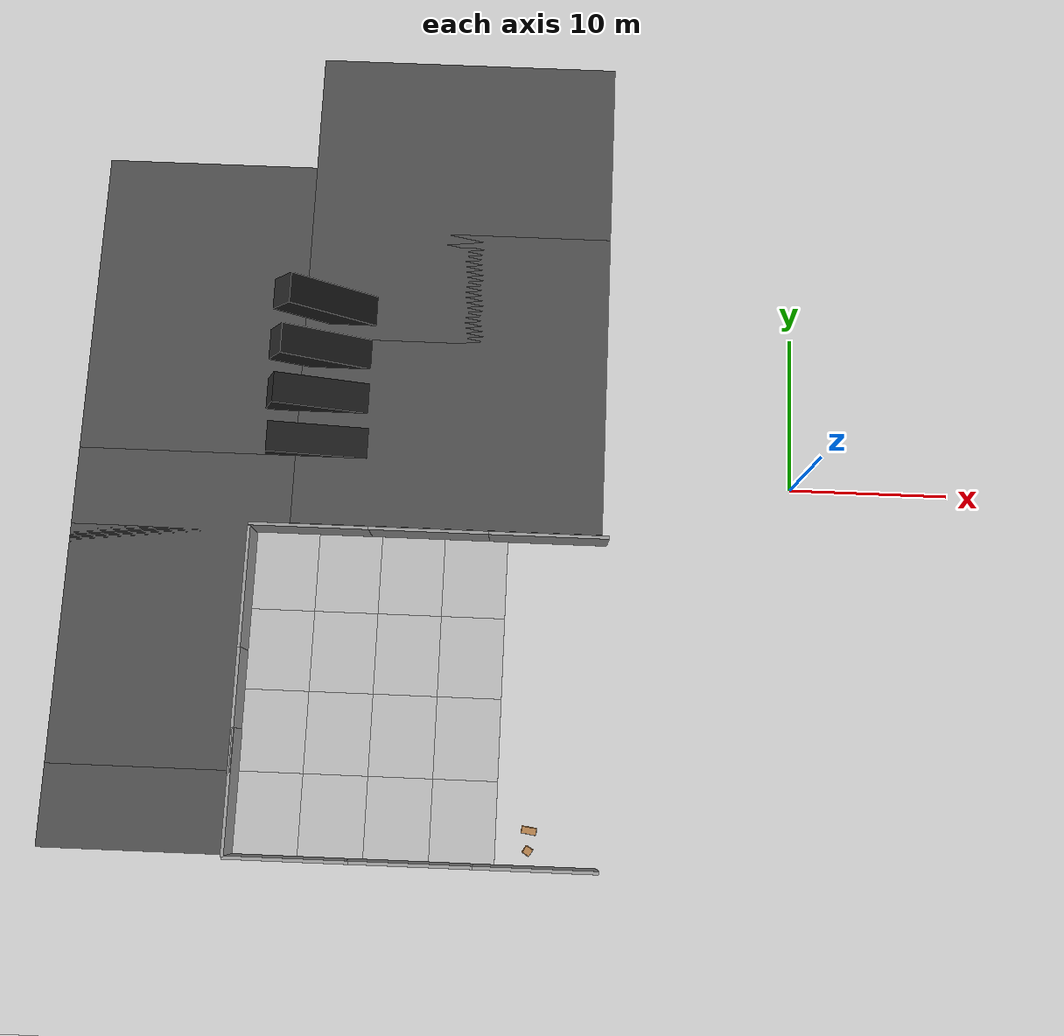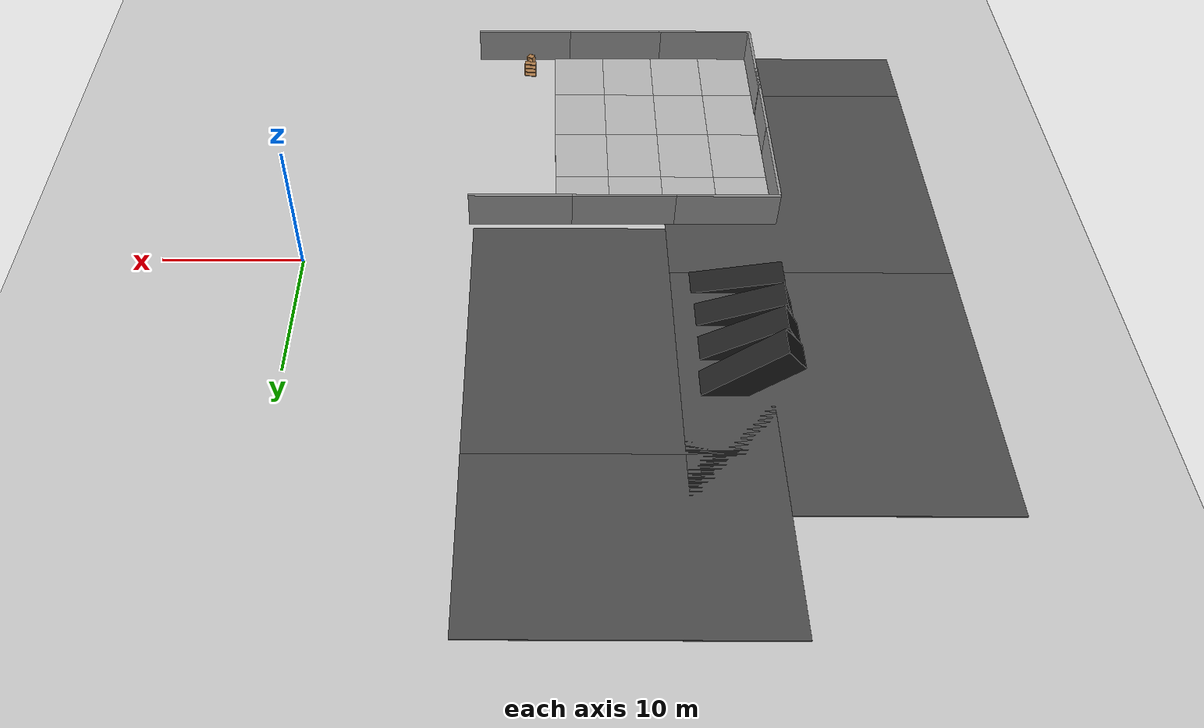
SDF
<sdf version="1.4">
 <world name="default">
  <light name="sun" type="directional">
   <pose>0 0 10 0 -0 0</pose>
   <diffuse>0.8 0.8 0.8 1</diffuse>
   <specular>0.2 0.2 0.2 1</specular>
   <attenuation>
    <range>1000</range>
    <constant>0.9</constant>
    <linear>0.01</linear>
    <quadratic>0.001</quadratic>
   </attenuation>
   <direction>0.5 0.1 -0.9</direction>
  </light>
  <model name="ground_plane">
   <static>1</static>
   <link name="link">
    <collision name="collision">
     <geometry><plane><normal>0 0 1</normal><size>100 100</size></plane></geometry>
     <surface><friction><ode><mu>100</mu><mu2>50</mu2></ode></friction></surface>
    </collision>
    <visual name="visual">
     <cast_shadows>0</cast_shadows>
     <geometry><plane><normal>0 0 1</normal><size>100 100</size></plane></geometry>
     <material>
      <script><uri>file://media/materials/scripts/gazebo.material</uri><name>Gazebo/Grey</name></script>
     </material>
    </visual>
    <velocity_decay><linear>0</linear><angular>0</angular></velocity_decay>
   </link>
  </model>
  <physics type="ode">
   <max_step_size>0.001</max_step_size>
   <real_time_factor>1</real_time_factor>
   <real_time_update_rate>1000</real_time_update_rate>
   <gravity>0 0 -9.8</gravity>
  </physics>
  <scene><ambient>0.4 0.4 0.4 1</ambient><background>0.7 0.7 0.7 1</background><shadows>1</shadows></scene>
  <spherical_coordinates>
   <surface_model>EARTH_WGS84</surface_model>
   <latitude_deg>0</latitude_deg>
   <longitude_deg>0</longitude_deg>
   <elevation>0</elevation>
   <heading_deg>0</heading_deg>
  </spherical_coordinates>
  <model name="grey_wall">
   <static>1</static>
   <link name="link">
    <pose>0 0 1.4 0 -0 0</pose>
    <collision name="collision"><geometry><box><size>7.5 0.2 2.8</size></box></geometry></collision>
    <visual name="visual">
     <cast_shadows>0</cast_shadows>
     <geometry><box><size>7.5 0.2 2.8</size></box></geometry>
     <material>
      <script>
       <uri>model://grey_wall/materials/scripts</uri>
       <uri>model://grey_wall/materials/textures</uri>
       <name>vrc/grey_wall</name>
      </script>
     </material>
    </visual>
    <velocity_decay><linear>0</linear><angular>0</angular></velocity_decay>
   </link>
   <pose>-15.4287 -4 0 0 -0 0</pose>
  </model>
  <model name="grey_wall_0">
   <static>1</static>
   <link name="link">
    <pose>0 0 1.4 0 -0 0</pose>
    <collision name="collision"><geometry><box><size>7.5 0.2 2.8</size></box></geometry></collision>
    <visual name="visual">
     <cast_shadows>0</cast_shadows>
     <geometry><box><size>7.5 0.2 2.8</size></box></geometry>
     <material>
      <script>
       <uri>model://grey_wall/materials/scripts</uri>
       <uri>model://grey_wall/materials/textures</uri>
       <name>vrc/grey_wall</name>
      </script>
     </material>
    </visual>
    <velocity_decay><linear>0</linear><angular>0</angular></velocity_decay>
   </link>
   <pose>-22.9275 -4 0 0 -0 0</pose>
  </model>
  <model name="grey_wall_1">
   <static>1</static>
   <link name="link">
    <pose>0 0 1.4 0 -0 0</pose>
    <collision name="collision"><geometry><box><size>7.5 0.2 2.8</size></box></geometry></collision>
    <visual name="visual">
     <cast_shadows>0</cast_shadows>
     <geometry><box><size>7.5 0.2 2.8</size></box></geometry>
     <material>
      <script>
       <uri>model://grey_wall/materials/scripts</uri>
       <uri>model://grey_wall/materials/textures</uri>
       <name>vrc/grey_wall</name>
      </script>
     </material>
    </visual>
    <velocity_decay><linear>0</linear><angular>0</angular></velocity_decay>
   </link>
   <pose>-30.3965 -4 0 0 -0 0</pose>
  </model>
  <model name="mud_box_6">
   <static>1</static>
   <link name="link">
    <collision name="collision"><geometry><box><size>8 10 0.2</size></box></geometry></collision>
    <visual name="visual_1">
     <pose>-2 2.5 0 0 -0 0</pose>
     <cast_shadows>0</cast_shadows>
     <geometry><box><size>4 5 0.2</size></box></geometry>
     <material>
      <script>
       <uri>model://mud_box/materials/scripts</uri>
       <uri>model://mud_box/materials/textures</uri>
       <name>vrc/mud</name>
      </script>
     </material>
    </visual>
    <visual name="visual_2">
     <pose>2 2.5 0 0 -0 0</pose>
     <cast_shadows>0</cast_shadows>
     <geometry><box><size>4 5 0.2</size></box></geometry>
     <material>
      <script>
       <uri>model://mud_box/materials/scripts</uri>
       <uri>model://mud_box/materials/textures</uri>
       <name>vrc/mud</name>
      </script>
     </material>
    </visual>
    <visual name="visual_3">
     <pose>2 -2.5 0 0 -0 0</pose>
     <cast_shadows>0</cast_shadows>
     <geometry><box><size>4 5 0.2</size></box></geometry>
     <material>
      <script>
       <uri>model://mud_box/materials/scripts</uri>
       <uri>model://mud_box/materials/textures</uri>
       <name>vrc/mud</name>
      </script>
     </material>
    </visual>
    <visual name="visual_4">
     <pose>-2 -2.5 0 0 -0 0</pose>
     <cast_shadows>0</cast_shadows>
     <geometry><box><size>4 5 0.2</size></box></geometry>
     <material>
      <script>
       <uri>model://mud_box/materials/scripts</uri>
       <uri>model://mud_box/materials/textures</uri>
       <name>vrc/mud</name>
      </script>
     </material>
    </visual>
    <velocity_decay><linear>0</linear><angular>0</angular></velocity_decay>
   </link>
   <pose>-30 -9 0 0 -0 0</pose>
  </model>
  <model name="mud_box_7">
   <static>1</static>
   <link name="link">
    <collision name="collision"><geometry><box><size>8 10 0.2</size></box></geometry></collision>
    <visual name="visual_1">
     <pose>-2 2.5 0 0 -0 0</pose>
     <cast_shadows>0</cast_shadows>
     <geometry><box><size>4 5 0.2</size></box></geometry>
     <material>
      <script>
       <uri>model://mud_box/materials/scripts</uri>
       <uri>model://mud_box/materials/textures</uri>
       <name>vrc/mud</name>
      </script>
     </material>
    </visual>
    <visual name="visual_2">
     <pose>2 2.5 0 0 -0 0</pose>
     <cast_shadows>0</cast_shadows>
     <geometry><box><size>4 5 0.2</size></box></geometry>
     <material>
      <script>
       <uri>model://mud_box/materials/scripts</uri>
       <uri>model://mud_box/materials/textures</uri>
       <name>vrc/mud</name>
      </script>
     </material>
    </visual>
    <visual name="visual_3">
     <pose>2 -2.5 0 0 -0 0</pose>
     <cast_shadows>0</cast_shadows>
     <geometry><box><size>4 5 0.2</size></box></geometry>
     <material>
      <script>
       <uri>model://mud_box/materials/scripts</uri>
       <uri>model://mud_box/materials/textures</uri>
       <name>vrc/mud</name>
      </script>
     </material>
    </visual>
    <visual name="visual_4">
     <pose>-2 -2.5 0 0 -0 0</pose>
     <cast_shadows>0</cast_shadows>
     <geometry><box><size>4 5 0.2</size></box></geometry>
     <material>
      <script>
       <uri>model://mud_box/materials/scripts</uri>
       <uri>model://mud_box/materials/textures</uri>
       <name>vrc/mud</name>
      </script>
     </material>
    </visual>
    <velocity_decay><linear>0</linear><angular>0</angular></velocity_decay>
   </link>
   <pose>-30 -19 0 0 -0 0</pose>
  </model>
  <model name="mud_box_8">
   <static>1</static>
   <link name="link">
    <collision name="collision"><geometry><box><size>8 10 0.2</size></box></geometry></collision>
    <visual name="visual_1">
     <pose>-2 2.5 0 0 -0 0</pose>
     <cast_shadows>0</cast_shadows>
     <geometry><box><size>4 5 0.2</size></box></geometry>
     <material>
      <script>
       <uri>model://mud_box/materials/scripts</uri>
       <uri>model://mud_box/materials/textures</uri>
       <name>vrc/mud</name>
      </script>
     </material>
    </visual>
    <visual name="visual_2">
     <pose>2 2.5 0 0 -0 0</pose>
     <cast_shadows>0</cast_shadows>
     <geometry><box><size>4 5 0.2</size></box></geometry>
     <material>
      <script>
       <uri>model://mud_box/materials/scripts</uri>
       <uri>model://mud_box/materials/textures</uri>
       <name>vrc/mud</name>
      </script>
     </material>
    </visual>
    <visual name="visual_3">
     <pose>2 -2.5 0 0 -0 0</pose>
     <cast_shadows>0</cast_shadows>
     <geometry><box><size>4 5 0.2</size></box></geometry>
     <material>
      <script>
       <uri>model://mud_box/materials/scripts</uri>
       <uri>model://mud_box/materials/textures</uri>
       <name>vrc/mud</name>
      </script>
     </material>
    </visual>
    <visual name="visual_4">
     <pose>-2 -2.5 0 0 -0 0</pose>
     <cast_shadows>0</cast_shadows>
     <geometry><box><size>4 5 0.2</size></box></geometry>
     <material>
      <script>
       <uri>model://mud_box/materials/scripts</uri>
       <uri>model://mud_box/materials/textures</uri>
       <name>vrc/mud</name>
      </script>
     </material>
    </visual>
    <velocity_decay><linear>0</linear><angular>0</angular></velocity_decay>
   </link>
   <pose>-22 -19 0 0 -0 0</pose>
  </model>
  <model name="mud_box_9">
   <static>1</static>
   <link name="link">
    <collision name="collision"><geometry><box><size>8 10 0.2</size></box></geometry></collision>
    <visual name="visual_1">
     <pose>-2 2.5 0 0 -0 0</pose>
     <cast_shadows>0</cast_shadows>
     <geometry><box><size>4 5 0.2</size></box></geometry>
     <material>
      <script>
       <uri>model://mud_box/materials/scripts</uri>
       <uri>model://mud_box/materials/textures</uri>
       <name>vrc/mud</name>
      </script>
     </material>
    </visual>
    <visual name="visual_2">
     <pose>2 2.5 0 0 -0 0</pose>
     <cast_shadows>0</cast_shadows>
     <geometry><box><size>4 5 0.2</size></box></geometry>
     <material>
      <script>
       <uri>model://mud_box/materials/scripts</uri>
       <uri>model://mud_box/materials/textures</uri>
       <name>vrc/mud</name>
      </script>
     </material>
    </visual>
    <visual name="visual_3">
     <pose>2 -2.5 0 0 -0 0</pose>
     <cast_shadows>0</cast_shadows>
     <geometry><box><size>4 5 0.2</size></box></geometry>
     <material>
      <script>
       <uri>model://mud_box/materials/scripts</uri>
       <uri>model://mud_box/materials/textures</uri>
       <name>vrc/mud</name>
      </script>
     </material>
    </visual>
    <visual name="visual_4">
     <pose>-2 -2.5 0 0 -0 0</pose>
     <cast_shadows>0</cast_shadows>
     <geometry><box><size>4 5 0.2</size></box></geometry>
     <material>
      <script>
       <uri>model://mud_box/materials/scripts</uri>
       <uri>model://mud_box/materials/textures</uri>
       <name>vrc/mud</name>
      </script>
     </material>
    </visual>
    <velocity_decay><linear>0</linear><angular>0</angular></velocity_decay>
   </link>
   <pose>-22 -9 0 0 -0 0</pose>
  </model>
  <model name="grey_wall_2">
   <static>1</static>
   <link name="link">
    <pose>0 0 1.4 0 -0 0</pose>
    <collision name="collision"><geometry><box><size>7.5 0.2 2.8</size></box></geometry></collision>
    <visual name="visual">
     <cast_shadows>0</cast_shadows>
     <geometry><box><size>7.5 0.2 2.8</size></box></geometry>
     <material>
      <script>
       <uri>model://grey_wall/materials/scripts</uri>
       <uri>model://grey_wall/materials/textures</uri>
       <name>vrc/grey_wall</name>
      </script>
     </material>
    </visual>
    <velocity_decay><linear>0</linear><angular>0</angular></velocity_decay>
   </link>
   <pose>-34.0892 -7.89484 0 0 -0 1.5708</pose>
  </model>
  <model name="grey_wall_3">
   <static>1</static>
   <link name="link">
    <pose>0 0 1.4 0 -0 0</pose>
    <collision name="collision"><geometry><box><size>7.5 0.2 2.8</size></box></geometry></collision>
    <visual name="visual">
     <cast_shadows>0</cast_shadows>
     <geometry><box><size>7.5 0.2 2.8</size></box></geometry>
     <material>
      <script>
       <uri>model://grey_wall/materials/scripts</uri>
       <uri>model://grey_wall/materials/textures</uri>
       <name>vrc/grey_wall</name>
      </script>
     </material>
    </visual>
    <velocity_decay><linear>0</linear><angular>0</angular></velocity_decay>
   </link>
   <pose>-34.0871 -15.3879 0 0 -0 1.5708</pose>
  </model>
  <model name="grey_wall_4">
   <static>1</static>
   <link name="link">
    <pose>0 0 1.4 0 -0 0</pose>
    <collision name="collision"><geometry><box><size>7.5 0.2 2.8</size></box></geometry></collision>
    <visual name="visual">
     <cast_shadows>0</cast_shadows>
     <geometry><box><size>7.5 0.2 2.8</size></box></geometry>
     <material>
      <script>
       <uri>model://grey_wall/materials/scripts</uri>
       <uri>model://grey_wall/materials/textures</uri>
       <name>vrc/grey_wall</name>
      </script>
     </material>
    </visual>
    <velocity_decay><linear>0</linear><angular>0</angular></velocity_decay>
   </link>
   <pose>-30.3276 -24.0059 0 0 -0 0</pose>
  </model>
  <model name="grey_wall_5">
   <static>1</static>
   <link name="link">
    <pose>0 0 1.4 0 -0 0</pose>
    <collision name="collision"><geometry><box><size>7.5 0.2 2.8</size></box></geometry></collision>
    <visual name="visual">
     <cast_shadows>0</cast_shadows>
     <geometry><box><size>7.5 0.2 2.8</size></box></geometry>
     <material>
      <script>
       <uri>model://grey_wall/materials/scripts</uri>
       <uri>model://grey_wall/materials/textures</uri>
       <name>vrc/grey_wall</name>
      </script>
     </material>
    </visual>
    <velocity_decay><linear>0</linear><angular>0</angular></velocity_decay>
   </link>
   <pose>-23 -24 0 0 -0 0</pose>
  </model>
  <model name="grey_wall_6">
   <static>1</static>
   <link name="link">
    <pose>0 0 1.4 0 -0 0</pose>
    <collision name="collision"><geometry><box><size>7.5 0.2 2.8</size></box></geometry></collision>
    <visual name="visual">
     <cast_shadows>0</cast_shadows>
     <geometry><box><size>7.5 0.2 2.8</size></box></geometry>
     <material>
      <script>
       <uri>model://grey_wall/materials/scripts</uri>
       <uri>model://grey_wall/materials/textures</uri>
       <name>vrc/grey_wall</name>
      </script>
     </material>
    </visual>
    <velocity_decay><linear>0</linear><angular>0</angular></velocity_decay>
   </link>
   <pose>-15.5058 -24 0 0 -0 0</pose>
  </model>
  <model name="grey_wall_7">
   <static>1</static>
   <link name="link">
    <pose>0 0 1.4 0 -0 0</pose>
    <collision name="collision"><geometry><box><size>7.5 0.2 2.8</size></box></geometry></collision>
    <visual name="visual">
     <cast_shadows>0</cast_shadows>
     <geometry><box><size>7.5 0.2 2.8</size></box></geometry>
     <material>
      <script>
       <uri>model://grey_wall/materials/scripts</uri>
       <uri>model://grey_wall/materials/textures</uri>
       <name>vrc/grey_wall</name>
      </script>
     </material>
    </visual>
    <velocity_decay><linear>0</linear><angular>0</angular></velocity_decay>
   </link>
   <pose>-34.0541 -20.2124 0 0 0 -1.5708</pose>
  </model>
  <model name="asphalt_plane_9">
   <static>1</static>
   <link name="link">
    <collision name="collision"><geometry><box><size>20 20 0.1</size></box></geometry></collision>
    <visual name="visual">
     <cast_shadows>0</cast_shadows>
     <geometry><box><size>20 20 0.1</size></box></geometry>
     <material>
      <script>
       <uri>model://asphalt_plane/materials/scripts</uri>
       <uri>model://asphalt_plane/materials/textures</uri>
       <name>vrc/asphalt</name>
      </script>
     </material>
    </visual>
    <velocity_decay><linear>0</linear><angular>0</angular></velocity_decay>
   </link>
   <pose>-22 6.58837 0 0 -0 0</pose>
  </model>
  <model name="asphalt_plane_10">
   <static>1</static>
   <link name="link">
    <collision name="collision"><geometry><box><size>20 20 0.1</size></box></geometry></collision>
    <visual name="visual">
     <cast_shadows>0</cast_shadows>
     <geometry><box><size>20 20 0.1</size></box></geometry>
     <material>
      <script>
       <uri>model://asphalt_plane/materials/scripts</uri>
       <uri>model://asphalt_plane/materials/textures</uri>
       <name>vrc/asphalt</name>
      </script>
     </material>
    </visual>
    <velocity_decay><linear>0</linear><angular>0</angular></velocity_decay>
   </link>
   <pose>-22 19 0 0 -0 0</pose>
  </model>
  <model name="asphalt_plane_11">
   <static>1</static>
   <link name="link">
    <collision name="collision"><geometry><box><size>20 20 0.1</size></box></geometry></collision>
    <visual name="visual">
     <cast_shadows>0</cast_shadows>
     <geometry><box><size>20 20 0.1</size></box></geometry>
     <material>
      <script>
       <uri>model://asphalt_plane/materials/scripts</uri>
       <uri>model://asphalt_plane/materials/textures</uri>
       <name>vrc/asphalt</name>
      </script>
     </material>
    </visual>
    <velocity_decay><linear>0</linear><angular>0</angular></velocity_decay>
   </link>
   <pose>-36 11 0 0 -0 0</pose>
  </model>
  <model name="asphalt_plane_12">
   <static>1</static>
   <link name="link">
    <collision name="collision"><geometry><box><size>20 20 0.1</size></box></geometry></collision>
    <visual name="visual">
     <cast_shadows>0</cast_shadows>
     <geometry><box><size>20 20 0.1</size></box></geometry>
     <material>
      <script>
       <uri>model://asphalt_plane/materials/scripts</uri>
       <uri>model://asphalt_plane/materials/textures</uri>
       <name>vrc/asphalt</name>
      </script>
     </material>
    </visual>
    <velocity_decay><linear>0</linear><angular>0</angular></velocity_decay>
   </link>
   <pose>-36 -9 0 0 -0 0</pose>
  </model>
  <model name="asphalt_plane_13">
   <static>1</static>
   <link name="link">
    <collision name="collision"><geometry><box><size>20 20 0.1</size></box></geometry></collision>
    <visual name="visual">
     <cast_shadows>0</cast_shadows>
     <geometry><box><size>20 20 0.1</size></box></geometry>
     <material>
      <script>
       <uri>model://asphalt_plane/materials/scripts</uri>
       <uri>model://asphalt_plane/materials/textures</uri>
       <name>vrc/asphalt</name>
      </script>
     </material>
    </visual>
    <velocity_decay><linear>0</linear><angular>0</angular></velocity_decay>
   </link>
   <pose>-36 -14 0 0 -0 0</pose>
  </model>
  <model name="cabinet">
   <static>1</static>
   <link name="cabinet_bottom_plate">
    <inertial>
     <pose>0 0 -1 0 -0 0</pose>
     <inertia><ixx>2.05</ixx><ixy>0</ixy><ixz>0</ixz><iyy>2.05</iyy><iyz>0</iyz><izz>2.05</izz></inertia>
     <mass>25</mass>
    </inertial>
    <collision name="cabinet_bottom_plate_geom">
     <pose>0 0 0.01 0 -0 0</pose>
     <geometry><box><size>0.45 0.45 0.02</size></box></geometry>
    </collision>
    <visual name="cabinet_bottom_plate_geom_visual">
     <pose>0 0 0.01 0 -0 0</pose>
     <geometry><box><size>0.45 0.45 0.02</size></box></geometry>
     <material>
      <script><uri>file://media/materials/scripts/gazebo.material</uri><name>Gazebo/Wood</name></script>
     </material>
    </visual>
    <collision name="cabinet_bottom_plate_geom_cabinet_back_plate">
     <pose>0.235 0 0.51 0 -0 0</pose>
     <geometry><box><size>0.02 0.45 1.02</size></box></geometry>
    </collision>
    <visual name="cabinet_bottom_plate_geom_cabinet_back_plate_visual">
     <pose>0.235 0 0.51 0 -0 0</pose>
     <geometry><box><size>0.02 0.45 1.02</size></box></geometry>
     <material>
      <script><uri>file://media/materials/scripts/gazebo.material</uri><name>Gazebo/Wood</name></script>
     </material>
    </visual>
    <collision name="cabinet_bottom_plate_geom_cabinet_left_plate">
     <pose>0 0.235 0.51 0 -0 0</pose>
     <geometry><box><size>0.45 0.02 1.02</size></box></geometry>
    </collision>
    <visual name="cabinet_bottom_plate_geom_cabinet_left_plate_visual">
     <pose>0 0.235 0.51 0 -0 0</pose>
     <geometry><box><size>0.45 0.02 1.02</size></box></geometry>
     <material>
      <script><uri>file://media/materials/scripts/gazebo.material</uri><name>Gazebo/Wood</name></script>
     </material>
    </visual>
    <collision name="cabinet_bottom_plate_geom_cabinet_middle_plate">
     <pose>0 0 0.51 0 -0 0</pose>
     <geometry><box><size>0.45 0.45 0.02</size></box></geometry>
    </collision>
    <visual name="cabinet_bottom_plate_geom_cabinet_middle_plate_visual">
     <pose>0 0 0.51 0 -0 0</pose>
     <geometry><box><size>0.45 0.45 0.02</size></box></geometry>
     <material>
      <script><uri>file://media/materials/scripts/gazebo.material</uri><name>Gazebo/Wood</name></script>
     </material>
    </visual>
    <collision name="cabinet_bottom_plate_geom_cabinet_right_plate">
     <pose>0 -0.235 0.51 0 -0 0</pose>
     <geometry><box><size>0.45 0.02 1.02</size></box></geometry>
    </collision>
    <visual name="cabinet_bottom_plate_geom_cabinet_right_plate_visual">
     <pose>0 -0.235 0.51 0 -0 0</pose>
     <geometry><box><size>0.45 0.02 1.02</size></box></geometry>
     <material>
      <script><uri>file://media/materials/scripts/gazebo.material</uri><name>Gazebo/Wood</name></script>
     </material>
    </visual>
    <collision name="cabinet_bottom_plate_geom_cabinet_top_plate">
     <pose>0 0 1.01 0 -0 0</pose>
     <geometry><box><size>0.45 0.45 0.02</size></box></geometry>
    </collision>
    <visual name="cabinet_bottom_plate_geom_cabinet_top_plate_visual">
     <pose>0 0 1.01 0 -0 0</pose>
     <geometry><box><size>0.45 0.45 0.02</size></box></geometry>
     <material>
      <script><uri>file://media/materials/scripts/gazebo.material</uri><name>Gazebo/Wood</name></script>
     </material>
    </visual>
    <velocity_decay><linear>0</linear><angular>0</angular></velocity_decay>
   </link>
   <pose>-16 -23 0 0 0 -2.11879</pose>
  </model>
  <model name="bookshelf">
   <static>1</static>
   <link name="link">
    <inertial><mass>1</mass></inertial>
    <collision name="back">
     <pose>0 0.005 0.6 0 -0 0</pose>
     <geometry><box><size>0.9 0.01 1.2</size></box></geometry>
    </collision>
    <visual name="visual1">
     <pose>0 0.005 0.6 0 -0 0</pose>
     <geometry><box><size>0.9 0.01 1.2</size></box></geometry>
     <material>
      <script><uri>file://media/materials/scripts/gazebo.material</uri><name>Gazebo/Wood</name></script>
     </material>
    </visual>
    <collision name="left_side">
     <pose>0.45 -0.195 0.6 0 -0 0</pose>
     <geometry><box><size>0.02 0.4 1.2</size></box></geometry>
    </collision>
    <visual name="visual2">
     <pose>0.45 -0.195 0.6 0 -0 0</pose>
     <geometry><box><size>0.02 0.4 1.2</size></box></geometry>
     <material>
      <script><uri>file://media/materials/scripts/gazebo.material</uri><name>Gazebo/Wood</name></script>
     </material>
    </visual>
    <collision name="right_side">
     <pose>-0.45 -0.195 0.6 0 -0 0</pose>
     <geometry><box><size>0.02 0.4 1.2</size></box></geometry>
    </collision>
    <visual name="visual3">
     <pose>-0.45 -0.195 0.6 0 -0 0</pose>
     <geometry><box><size>0.02 0.4 1.2</size></box></geometry>
     <material>
      <script><uri>file://media/materials/scripts/gazebo.material</uri><name>Gazebo/Wood</name></script>
     </material>
    </visual>
    <collision name="bottom">
     <pose>0 -0.195 0.03 0 -0 0</pose>
     <geometry><box><size>0.88 0.4 0.06</size></box></geometry>
    </collision>
    <visual name="visual4">
     <pose>0 -0.195 0.03 0 -0 0</pose>
     <geometry><box><size>0.88 0.4 0.06</size></box></geometry>
     <material>
      <script><uri>file://media/materials/scripts/gazebo.material</uri><name>Gazebo/Wood</name></script>
     </material>
    </visual>
    <collision name="top">
     <pose>0 -0.195 1.19 0 -0 0</pose>
     <geometry><box><size>0.88 0.4 0.02</size></box></geometry>
    </collision>
    <visual name="visual5">
     <pose>0 -0.195 1.19 0 -0 0</pose>
     <geometry><box><size>0.88 0.4 0.02</size></box></geometry>
     <material>
      <script><uri>file://media/materials/scripts/gazebo.material</uri><name>Gazebo/Wood</name></script>
     </material>
    </visual>
    <collision name="low_shelf">
     <pose>0 -0.195 0.43 0 -0 0</pose>
     <geometry><box><size>0.88 0.4 0.02</size></box></geometry>
    </collision>
    <visual name="visual6">
     <pose>0 -0.195 0.43 0 -0 0</pose>
     <geometry><box><size>0.88 0.4 0.02</size></box></geometry>
     <material>
      <script><uri>file://media/materials/scripts/gazebo.material</uri><name>Gazebo/Wood</name></script>
     </material>
    </visual>
    <collision name="high_shelf">
     <pose>0 -0.195 0.8 0 -0 0</pose>
     <geometry><box><size>0.88 0.4 0.02</size></box></geometry>
    </collision>
    <visual name="visual7">
     <pose>0 -0.195 0.8 0 -0 0</pose>
     <geometry><box><size>0.88 0.4 0.02</size></box></geometry>
     <material>
      <script><uri>file://media/materials/scripts/gazebo.material</uri><name>Gazebo/Wood</name></script>
     </material>
    </visual>
    <velocity_decay><linear>0</linear><angular>0</angular></velocity_decay>
   </link>
   <pose>-16 -22 0 0 -0 3.00452</pose>
  </model>
  <model name="ten_degree">
   <pose>-30 2 -0.5 0 0.174532925 0</pose>
   <static>true</static>
   <link name="link">
    <collision name="collision"><geometry><box><size>8 2 2</size></box></geometry></collision>
    <visual name="visual">
     <geometry><box><size>8 2 2</size></box></geometry>
     <material>
      <script><uri>file://media/materials/scripts/gazebo.material</uri><name>Gazebo/FlatBlack</name></script>
     </material>
    </visual>
   </link>
  </model>
  <model name="twenty_degree">
   <pose>-30 5 -0.1 0 0.34906585 0</pose>
   <static>true</static>
   <link name="link">
    <collision name="collision"><geometry><box><size>8 2 2</size></box></geometry></collision>
    <visual name="visual">
     <geometry><box><size>8 2 2</size></box></geometry>
     <material>
      <script><uri>file://media/materials/scripts/gazebo.material</uri><name>Gazebo/FlatBlack</name></script>
     </material>
    </visual>
   </link>
  </model>
  <model name="thirty_degree">
   <pose>-30 8 0.34 0 0.523598776 0</pose>
   <static>true</static>
   <link name="link">
    <collision name="collision"><geometry><box><size>8 2 2</size></box></geometry></collision>
    <visual name="visual">
     <geometry><box><size>8 2 2</size></box></geometry>
     <material>
      <script><uri>file://media/materials/scripts/gazebo.material</uri><name>Gazebo/FlatBlack</name></script>
     </material>
    </visual>
   </link>
  </model>
  <model name="forty_degree">
   <pose>-30 11 1 0 0.698131701 0</pose>
   <static>true</static>
   <link name="link">
    <collision name="collision"><geometry><box><size>8 2 2</size></box></geometry></collision>
    <visual name="visual">
     <geometry><box><size>8 2 2</size></box></geometry>
     <material>
      <script><uri>file://media/materials/scripts/gazebo.material</uri><name>Gazebo/FlatBlack</name></script>
     </material>
    </visual>
   </link>
  </model>
 </world>
</sdf>
